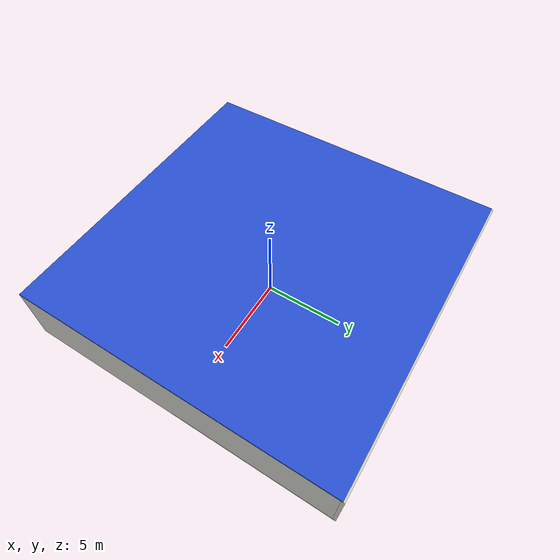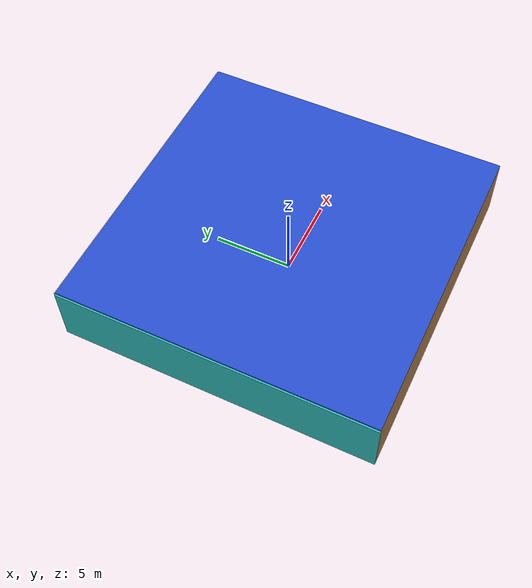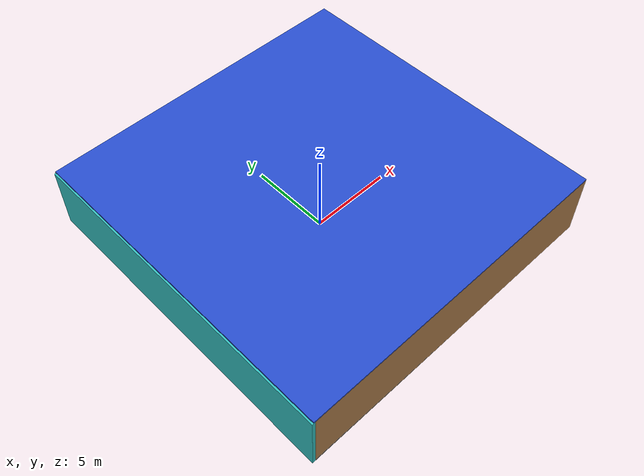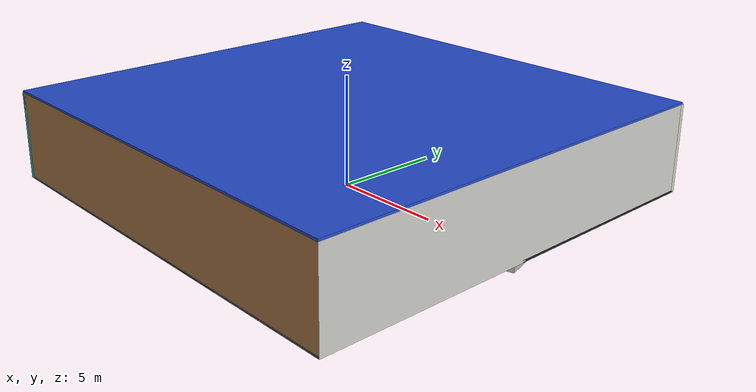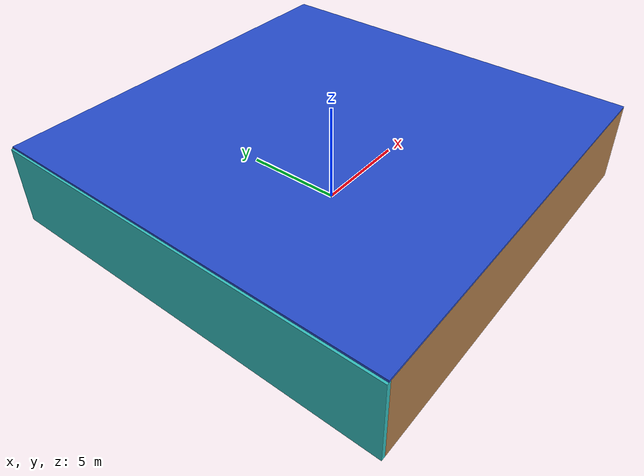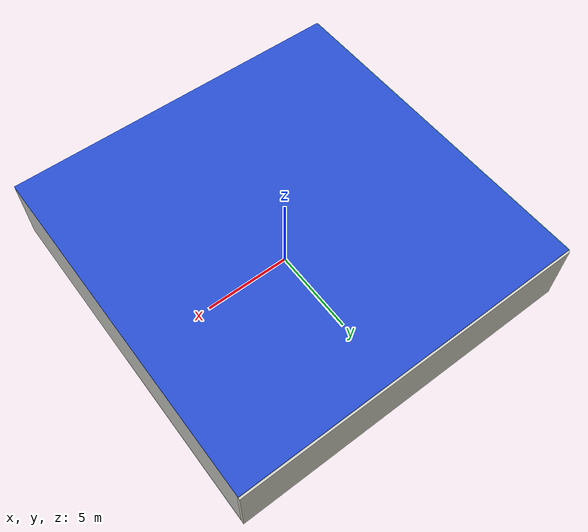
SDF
<sdf version="1.4">
 <world name="default">
  <physics type="ode">
   <max_step_size>0.001</max_step_size>
   <real_time_factor>1</real_time_factor>
   <real_time_update_rate>1000</real_time_update_rate>
   <gravity>0 0 -9.8</gravity>
  </physics>
  <scene><ambient>0.4 0.4 0.4 1</ambient><background>0.7 0.7 0.7 1</background><shadows>1</shadows></scene>
  <model name="Surrounding">
   <static>1</static>
   <link name="Ceiling">
    <collision name="Ceiling_Collision"><geometry><box><size>20 20 0.1</size></box></geometry></collision>
    <visual name="Ceiling_Visual">
     <geometry><box><size>20 20 0.1</size></box></geometry>
     <material>
      <script><uri>file://media/materials/scripts/gazebo.material</uri><name>Gazebo/BlueLaser</name></script>
     </material>
    </visual>
    <pose>0 0 4.05 0 0 0</pose>
   </link>
   <link name="Wall_South">
    <collision name="Wall_South_Collision">
     <geometry><box><size>20 0 4</size></box></geometry>
     <pose>0 0 2 0 -0 0</pose>
    </collision>
    <visual name="Wall_South_Visual">
     <pose>0 0 2 0 -0 0</pose>
     <geometry><box><size>20 0 4</size></box></geometry>
     <material>
      <script><uri>file://media/materials/scripts/gazebo.material</uri><name>Gazebo/WoodPallet</name></script>
     </material>
    </visual>
    <velocity_decay><linear>0</linear><angular>0</angular></velocity_decay>
    <pose>0 -10 0 0 -0 0</pose>
   </link>
   <link name="Wall_East">
    <collision name="Wall_21_Collision">
     <geometry><box><size>20 0 4</size></box></geometry>
     <pose>0 0 2 0 -0 0</pose>
    </collision>
    <visual name="Wall_21_Visual">
     <pose>0 0 2 0 -0 0</pose>
     <geometry><box><size>20 0 4</size></box></geometry>
     <material>
      <script><uri>file://media/materials/scripts/gazebo.material</uri><name>Gazebo/CeilingTiled</name></script>
     </material>
    </visual>
    <velocity_decay><linear>0</linear><angular>0</angular></velocity_decay>
    <pose>10 0 0 0 -0 1.5708</pose>
   </link>
   <link name="Wall_North">
    <collision name="Wall_22_Collision">
     <geometry><box><size>20 0.2 4</size></box></geometry>
     <pose>0 0 2 0 -0 0</pose>
    </collision>
    <visual name="Wall_22_Visual">
     <pose>0 0 2 0 -0 0</pose>
     <geometry><box><size>20 0.2 4</size></box></geometry>
     <material>
      <script><uri>file://media/materials/scripts/gazebo.material</uri><name>Gazebo/PaintedWall</name></script>
     </material>
    </visual>
    <velocity_decay><linear>0</linear><angular>0</angular></velocity_decay>
    <pose>0 10 0 0 -0 0</pose>
   </link>
   <link name="Wall_West">
    <collision name="Wall_23_Collision">
     <geometry><box><size>20 0.2 4</size></box></geometry>
     <pose>0 0 2 0 -0 0</pose>
    </collision>
    <visual name="Wall_23_Visual">
     <pose>0 0 2 0 -0 0</pose>
     <geometry><box><size>20 0.2 4</size></box></geometry>
     <material>
      <script>
       <uri>file://media/materials/scripts/gazebo.material</uri>
       <name>Gazebo/TurquoiseGlowOutline</name>
      </script>
     </material>
    </visual>
    <velocity_decay><linear>0</linear><angular>0</angular></velocity_decay>
    <pose>-10 0 0 0 0 -1.5708</pose>
   </link>
   <link name="Ground_link">
    <collision name="collision">
     <pose>0 0 .05 0 -0 0</pose>
     <geometry><box><size>20 20 0.1</size></box></geometry>
    </collision>
    <visual name="visual">
     <pose>0 0 .05 0 -0 0</pose>
     <geometry><box><size>20 20 0.1</size></box></geometry>
     <material>
      <script><uri>file://media/materials/scripts/gazebo.material</uri><name>Gazebo/Black</name></script>
     </material>
    </visual>
   </link>
   <static>1</static>
  </model>
  <spherical_coordinates>
   <surface_model>EARTH_WGS84</surface_model>
   <latitude_deg>0</latitude_deg>
   <longitude_deg>0</longitude_deg>
   <elevation>0</elevation>
   <heading_deg>0</heading_deg>
  </spherical_coordinates>
  <light name="lightball_0" type="diffuse">
   <diffuse>0.8 0.8 0.8 1</diffuse>
   <specular>0.2 0.2 0.2 1</specular>
   <attenuation>
    <range>100</range>
    <constant>0.7</constant>
    <linear>0.01</linear>
    <quadratic>0.001</quadratic>
   </attenuation>
   <direction>-0.5 0.1 -0.9</direction>
   <pose>0.955634035625 -2.89359516378 1.22194270468 0 0 0</pose>
  </light>
  <light name="lightball_1" type="diffuse">
   <diffuse>0.8 0.8 0.8 1</diffuse>
   <specular>0.2 0.2 0.2 1</specular>
   <attenuation>
    <range>100</range>
    <constant>0.7</constant>
    <linear>0.01</linear>
    <quadratic>0.001</quadratic>
   </attenuation>
   <direction>-0.5 0.1 -0.9</direction>
   <pose>3.68564246899 -8.48869330174 2.55783147752 0 0 0</pose>
  </light>
  <light name="lightball_2" type="diffuse">
   <diffuse>0.8 0.8 0.8 1</diffuse>
   <specular>0.2 0.2 0.2 1</specular>
   <attenuation>
    <range>100</range>
    <constant>0.7</constant>
    <linear>0.01</linear>
    <quadratic>0.001</quadratic>
   </attenuation>
   <direction>-0.5 0.1 -0.9</direction>
   <pose>-9.20358998328 -7.79076440292 1.04215276788 0 0 0</pose>
  </light>
  <light name="lightball_3" type="diffuse">
   <diffuse>0.8 0.8 0.8 1</diffuse>
   <specular>0.2 0.2 0.2 1</specular>
   <attenuation>
    <range>100</range>
    <constant>0.7</constant>
    <linear>0.01</linear>
    <quadratic>0.001</quadratic>
   </attenuation>
   <direction>-0.5 0.1 -0.9</direction>
   <pose>3.5263442616 -7.31532433688 1.94396372188 0 0 0</pose>
  </light>
  <light name="lightball_4" type="diffuse">
   <diffuse>0.8 0.8 0.8 1</diffuse>
   <specular>0.2 0.2 0.2 1</specular>
   <attenuation>
    <range>100</range>
    <constant>0.7</constant>
    <linear>0.01</linear>
    <quadratic>0.001</quadratic>
   </attenuation>
   <direction>-0.5 0.1 -0.9</direction>
   <pose>3.41810382672 3.45987272103 3.18772020573 0 0 0</pose>
  </light>
  <light name="lightball_5" type="diffuse">
   <diffuse>0.8 0.8 0.8 1</diffuse>
   <specular>0.2 0.2 0.2 1</specular>
   <attenuation>
    <range>100</range>
    <constant>0.7</constant>
    <linear>0.01</linear>
    <quadratic>0.001</quadratic>
   </attenuation>
   <direction>-0.5 0.1 -0.9</direction>
   <pose>9.05526177804 -3.6355933298 3.89731803285 0 0 0</pose>
  </light>
  <light name="lightball_6" type="diffuse">
   <diffuse>0.8 0.8 0.8 1</diffuse>
   <specular>0.2 0.2 0.2 1</specular>
   <attenuation>
    <range>100</range>
    <constant>0.7</constant>
    <linear>0.01</linear>
    <quadratic>0.001</quadratic>
   </attenuation>
   <direction>-0.5 0.1 -0.9</direction>
   <pose>-2.27862767642 -4.80604426024 1.22963784653 0 0 0</pose>
  </light>
  <light name="lightball_7" type="diffuse">
   <diffuse>0.8 0.8 0.8 1</diffuse>
   <specular>0.2 0.2 0.2 1</specular>
   <attenuation>
    <range>100</range>
    <constant>0.7</constant>
    <linear>0.01</linear>
    <quadratic>0.001</quadratic>
   </attenuation>
   <direction>-0.5 0.1 -0.9</direction>
   <pose>-2.42369794416 -2.48888785772 0.649315472995 0 0 0</pose>
  </light>
  <light name="lightball_8" type="diffuse">
   <diffuse>0.8 0.8 0.8 1</diffuse>
   <specular>0.2 0.2 0.2 1</specular>
   <attenuation>
    <range>100</range>
    <constant>0.7</constant>
    <linear>0.01</linear>
    <quadratic>0.001</quadratic>
   </attenuation>
   <direction>-0.5 0.1 -0.9</direction>
   <pose>-0.855588894775 -0.239685656352 2.52734327296 0 0 0</pose>
  </light>
  <light name="lightball_9" type="diffuse">
   <diffuse>0.8 0.8 0.8 1</diffuse>
   <specular>0.2 0.2 0.2 1</specular>
   <attenuation>
    <range>100</range>
    <constant>0.7</constant>
    <linear>0.01</linear>
    <quadratic>0.001</quadratic>
   </attenuation>
   <direction>-0.5 0.1 -0.9</direction>
   <pose>0.233217335968 -4.82542946671 1.08124380181 0 0 0</pose>
  </light>
  <light name="lightball_10" type="diffuse">
   <diffuse>0.8 0.8 0.8 1</diffuse>
   <specular>0.2 0.2 0.2 1</specular>
   <attenuation>
    <range>100</range>
    <constant>0.7</constant>
    <linear>0.01</linear>
    <quadratic>0.001</quadratic>
   </attenuation>
   <direction>-0.5 0.1 -0.9</direction>
   <pose>9.19431089083 -1.47145798291 2.48815825435 0 0 0</pose>
  </light>
  <light name="lightball_11" type="diffuse">
   <diffuse>0.8 0.8 0.8 1</diffuse>
   <specular>0.2 0.2 0.2 1</specular>
   <attenuation>
    <range>100</range>
    <constant>0.7</constant>
    <linear>0.01</linear>
    <quadratic>0.001</quadratic>
   </attenuation>
   <direction>-0.5 0.1 -0.9</direction>
   <pose>-6.50263289268 8.86522499238 2.10582823468 0 0 0</pose>
  </light>
  <light name="lightball_12" type="diffuse">
   <diffuse>0.8 0.8 0.8 1</diffuse>
   <specular>0.2 0.2 0.2 1</specular>
   <attenuation>
    <range>100</range>
    <constant>0.7</constant>
    <linear>0.01</linear>
    <quadratic>0.001</quadratic>
   </attenuation>
   <direction>-0.5 0.1 -0.9</direction>
   <pose>-9.20657039455 6.36600012645 1.77054704985 0 0 0</pose>
  </light>
  <include><uri>model://cabinet</uri><pose>-7.40202733153 -2.22132811294 0 0 0 1.24597751315</pose></include>
  <include>
   <uri>model://construction_cone</uri>
   <pose>-5.63433681105 2.39811361381 0 0 0 0.441067625247</pose>
  </include>
  <include><uri>model://cabinet</uri><pose>-4.58333864665 3.84756303607 0 0 0 2.47374776842</pose></include>
  <include><uri>model://cabinet</uri><pose>-2.40886665761 -2.65662618317 0 0 0 2.81003752596</pose></include>
  <include>
   <uri>model://textured_shapes</uri>
   <pose>0.68617714455 -8.66716336419 0 0 0 1.50240055436</pose>
  </include>
  <include>
   <uri>model://robocup_3Dsim_goal</uri>
   <pose>1.69626466707 1.49016664244 0 0 0 1.77216351117</pose>
  </include>
  <include><uri>model://table</uri><pose>5.38293497817 -6.78111882366 0 0 0 0.061544573227</pose></include>
  <include>
   <uri>model://robocup_3Dsim_goal</uri>
   <pose>4.73476541923 -5.01469602548 0 0 0 0.141548477719</pose>
  </include>
  <include>
   <uri>model://textured_shapes</uri>
   <pose>6.72725636076 -3.86732539794 0 0 0 2.86975882037</pose>
  </include>
  <include>
   <uri>model://textured_shapes</uri>
   <pose>7.65203392463 -0.326647778848 0 0 0 1.84406557844</pose>
  </include>
 </world>
</sdf>

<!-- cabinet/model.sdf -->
<sdf version="1.5">
  <model name="cabinet">
    <static>true</static>
    <link name="cabinet_bottom_plate">
      <inertial>
        <pose>0 0 -1 0 0 0</pose>
        <inertia>
          <ixx>2.050000</ixx>
          <ixy>0</ixy>
          <ixz>0</ixz>
          <iyy>2.050000</iyy>
          <iyz>0</iyz>
          <izz>2.050000</izz>
        </inertia>
        <mass>25.000000</mass>
      </inertial>
      <collision name="cabinet_bottom_plate_geom">
        <pose>0 0 0.010000 0 0 0</pose>
        <geometry>
          <box>
            <size>0.450000 0.450000 0.020000</size>
          </box>
        </geometry>
      </collision>
      <visual name="cabinet_bottom_plate_geom_visual">
        <pose>0 0 0.010000 0 0 0</pose>
        <geometry>
          <box>
            <size>0.450000 0.450000 0.020000</size>
          </box>
        </geometry>
        <material>
          <script>
            <uri>model://media/materials/scripts/gazebo.material</uri>
            <name>Gazebo/Wood</name>
          </script>
        </material>
      </visual>
      <collision name="cabinet_bottom_plate_geom_cabinet_back_plate">
        <pose>0.235000 0 0.510000 0 0 0</pose>
        <geometry>
          <box>
            <size>0.020000 0.450000 1.020000</size>
          </box>
        </geometry>
      </collision>
      <visual name="cabinet_bottom_plate_geom_cabinet_back_plate_visual">
        <pose>0.235000 0 0.510000 0 0 0</pose>
        <geometry>
          <box>
            <size>0.020000 0.450000 1.020000</size>
          </box>
        </geometry>
        <material>
          <script>
            <uri>model://media/materials/scripts/gazebo.material</uri>
            <name>Gazebo/Wood</name>
          </script>
        </material>
      </visual>
      <collision name="cabinet_bottom_plate_geom_cabinet_left_plate">
        <pose>0 0.235000 0.510000 0 0 0</pose>
        <geometry>
          <box>
            <size>0.450000 0.020000 1.020000</size>
          </box>
        </geometry>
      </collision>
      <visual name="cabinet_bottom_plate_geom_cabinet_left_plate_visual">
        <pose>0 0.235000 0.510000 0 0 0</pose>
        <geometry>
          <box>
            <size>0.450000 0.020000 1.020000</size>
          </box>
        </geometry>
        <material>
          <script>
            <uri>model://media/materials/scripts/gazebo.material</uri>
            <name>Gazebo/Wood</name>
          </script>
        </material>
      </visual>
      <collision name="cabinet_bottom_plate_geom_cabinet_middle_plate">
        <pose>0 0 0.510000 0 0 0</pose>
        <geometry>
          <box>
            <size>0.450000 0.450000 0.020000</size>
          </box>
        </geometry>
      </collision>
      <visual name="cabinet_bottom_plate_geom_cabinet_middle_plate_visual">
        <pose>0 0 0.510000 0 0 0</pose>
        <geometry>
          <box>
            <size>0.450000 0.450000 0.020000</size>
          </box>
        </geometry>
        <material>
          <script>
            <uri>model://media/materials/scripts/gazebo.material</uri>
            <name>Gazebo/Wood</name>
          </script>
        </material>
      </visual>
      <collision name="cabinet_bottom_plate_geom_cabinet_right_plate">
        <pose>0 -0.235000 0.510000 0 0 0</pose>
        <geometry>
          <box>
            <size>0.450000 0.020000 1.020000</size>
          </box>
        </geometry>
      </collision>
      <visual name="cabinet_bottom_plate_geom_cabinet_right_plate_visual">
        <pose>0 -0.235000 0.510000 0 0 0</pose>
        <geometry>
          <box>
            <size>0.450000 0.020000 1.020000</size>
          </box>
        </geometry>
        <material>
          <script>
            <uri>model://media/materials/scripts/gazebo.material</uri>
            <name>Gazebo/Wood</name>
          </script>
        </material>
      </visual>
      <collision name="cabinet_bottom_plate_geom_cabinet_top_plate">
        <pose>0 0 1.010000 0 0 0</pose>
        <geometry>
          <box>
            <size>0.450000 0.450000 0.020000</size>
          </box>
        </geometry>
      </collision>
      <visual name="cabinet_bottom_plate_geom_cabinet_top_plate_visual">
        <pose>0 0 1.010000 0 0 0</pose>
        <geometry>
          <box>
            <size>0.450000 0.450000 0.020000</size>
          </box>
        </geometry>
        <material>
          <script>
            <uri>model://media/materials/scripts/gazebo.material</uri>
            <name>Gazebo/Wood</name>
          </script>
        </material>
      </visual>
    </link>
  </model>
</sdf>

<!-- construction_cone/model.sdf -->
<sdf version="1.5">
  <model name="Construction Cone">
    <link name="link">
      <collision name="collision">
        <geometry>
          <mesh>
            <scale>10 10 10</scale>
            <uri>file://isr-testbed/construction_cone/meshes/construction_cone.dae</uri>
          </mesh>
        </geometry>
      </collision>
      <visual name="visual">
        <geometry>
          <mesh>
            <scale>10 10 10</scale>
            <uri>file://isr-testbed/construction_cone/meshes/construction_cone.dae</uri>
          </mesh>
        </geometry>
      </visual>
    </link>
  </model>
</sdf>

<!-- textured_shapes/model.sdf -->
<sdf version="1.6">
  <model name="textured_shapes">
    <pose>0 0 0.5 0 0 0</pose>
    <link name="box">
      <pose>0 -1.5 0 0 0 0</pose>
      <collision name="collision">
        <geometry>
          <box>
            <size>1 1 1</size>
          </box>
        </geometry>
      </collision>
      <visual name="visual">
        <geometry>
          <box>
            <size>1 1 1</size>
          </box>
        </geometry>
        <material>
          <script>
            <uri>model://../model_source/models/textured_shapes/materials/scripts</uri>
            <uri>model://../model_source/models/textured_shapes/materials/textures</uri>
            <name>TexturedShape/Squares</name>
          </script>
        </material>
      </visual>
    </link>
    <link name="sphere">
      <collision name="collision">
        <geometry>
          <sphere>
            <radius>0.5</radius>
          </sphere>
        </geometry>
      </collision>
      <visual name="visual">
        <geometry>
          <sphere>
            <radius>0.5</radius>
          </sphere>
        </geometry>
        <material>
          <script>
            <uri>model://../model_source/models/textured_shapes/materials/scripts</uri>
            <uri>model://../model_source/models/textured_shapes/materials/textures</uri>
            <name>TexturedShape/Squares</name>
          </script>
        </material>
      </visual>
    </link>
    <link name="cylinder">
      <pose>0 1.5 0 0 0 0</pose>
      <collision name="collision">
        <geometry>
          <cylinder>
            <radius>0.5</radius>
            <length>1</length>
          </cylinder>
        </geometry>
      </collision>
      <visual name="visual">
        <geometry>
          <cylinder>
            <radius>0.5</radius>
            <length>1</length>
          </cylinder>
        </geometry>
        <material>
          <script>
            <uri>model://../model_source/models/textured_shapes/materials/scripts</uri>
            <uri>model://../model_source/models/textured_shapes/materials/textures</uri>
            <name>TexturedShape/Squares</name>
          </script>
        </material>
      </visual>
    </link>
  </model>
</sdf>

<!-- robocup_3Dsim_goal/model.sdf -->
<sdf version="1.5">
  <model name="robocup_3d_goal">
    <static>true</static>
    <link name="left_post">
      <pose>0 1.05 0.45 0 0 0</pose>
      <collision name="collision">
        <geometry>
          <cylinder>
            <radius>0.05</radius>
            <length>0.9</length>
          </cylinder>
        </geometry>
      </collision>
      <visual name="visual">
        <geometry>
          <cylinder>
            <radius>0.05</radius>
            <length>0.9</length>
          </cylinder>
        </geometry>
        <material>
          <script>
            <uri>file://media/materials/scripts/gazebo.material</uri>
            <name>Gazebo/ZincYellow</name>
          </script>
        </material>
      </visual>
    </link>
    <link name="left_support_horiz_lower">
      <pose>0.30 1.05 0.01 0 0 0</pose>
      <collision name="collision">
        <geometry>
          <box>
            <size>0.50 0.02 0.02</size>
          </box>
        </geometry>
      </collision>
      <visual name="visual">
        <geometry>
          <box>
            <size>0.50 0.02 0.02</size>
          </box>
        </geometry>
        <material>
          <script>
            <uri>file://media/materials/scripts/gazebo.material</uri>
            <name>Gazebo/White</name>
          </script>
        </material>
      </visual>
    </link>
    <link name="left_support_horiz_upper">
      <pose>0.30 1.05 0.79 0 0 0</pose>
      <collision name="collision">
        <geometry>
          <box>
            <size>0.50 0.02 0.02</size>
          </box>
        </geometry>
      </collision>
      <visual name="visual">
        <geometry>
          <box>
            <size>0.50 0.02 0.02</size>
          </box>
        </geometry>
        <material>
          <script>
            <uri>file://media/materials/scripts/gazebo.material</uri>
            <name>Gazebo/White</name>
          </script>
        </material>
      </visual>
    </link>
    <link name="left_support_vertical">
      <pose>0.56 1.05 0.4 0 1.5708 0</pose>
      <collision name="collision">
        <geometry>
          <box>
            <size>0.80 0.02 0.02</size>
          </box>
        </geometry>
      </collision>
      <visual name="visual">
        <geometry>
          <box>
            <size>0.80 0.02 0.02</size>
          </box>
        </geometry>
        <material>
          <script>
            <uri>file://media/materials/scripts/gazebo.material</uri>
            <name>Gazebo/White</name>
          </script>
        </material>
      </visual>
    </link>
    <link name="right_support_horiz_lower">
      <pose>0.30 -1.05 0.01 0 0 0</pose>
      <collision name="collision">
        <geometry>
          <box>
            <size>0.50 0.02 0.02</size>
          </box>
        </geometry>
      </collision>
      <visual name="visual">
        <geometry>
          <box>
            <size>0.50 0.02 0.02</size>
          </box>
        </geometry>
        <material>
          <script>
            <uri>file://media/materials/scripts/gazebo.material</uri>
            <name>Gazebo/White</name>
          </script>
        </material>
      </visual>
    </link>
    <link name="right_support_horiz_upper">
      <pose>0.30 -1.05 0.79 0 0 0</pose>
      <collision name="collision">
        <geometry>
          <box>
            <size>0.50 0.02 0.02</size>
          </box>
        </geometry>
      </collision>
      <visual name="visual">
        <geometry>
          <box>
            <size>0.50 0.02 0.02</size>
          </box>
        </geometry>
        <material>
          <script>
            <uri>file://media/materials/scripts/gazebo.material</uri>
            <name>Gazebo/White</name>
          </script>
        </material>
      </visual>
    </link>
    <link name="right_support_vertical">
      <pose>0.56 -1.05 0.4 0 1.5708 0</pose>
      <collision name="collision">
        <geometry>
          <box>
            <size>0.80 0.02 0.02</size>
          </box>
        </geometry>
      </collision>
      <visual name="visual">
        <geometry>
          <box>
            <size>0.80 0.02 0.02</size>
          </box>
        </geometry>
        <material>
          <script>
            <uri>file://media/materials/scripts/gazebo.material</uri>
            <name>Gazebo/White</name>
          </script>
        </material>
      </visual>
    </link>
    <link name="center_support_horiz_lower">
      <pose>0.56 0 0.01 0 1.5708 0</pose>
      <collision name="collision">
        <geometry>
          <box>
            <size>0.02 2.08 0.02</size>
          </box>
        </geometry>
      </collision>
      <visual name="visual">
        <geometry>
          <box>
            <size>0.02 2.08 0.02</size>
          </box>
        </geometry>
        <material>
          <script>
            <uri>file://media/materials/scripts/gazebo.material</uri>
            <name>Gazebo/White</name>
          </script>
        </material>
      </visual>
    </link>
    <link name="center_support_horiz_upper">
      <pose>0.56 0 0.79 0 1.5708 0</pose>
      <collision name="collision">
        <geometry>
          <box>
            <size>0.02 2.08 0.02</size>
          </box>
        </geometry>
      </collision>
      <visual name="visual">
        <geometry>
          <box>
            <size>0.02 2.08 0.02</size>
          </box>
        </geometry>
        <material>
          <script>
            <uri>file://media/materials/scripts/gazebo.material</uri>
            <name>Gazebo/White</name>
          </script>
        </material>
      </visual>
    </link>
    <link name="right_post">
      <pose>0 -1.05 0.45 0 0 0</pose>
      <collision name="collision">
        <geometry>
          <cylinder>
            <radius>0.05</radius>
            <length>0.9</length>
          </cylinder>
        </geometry>
      </collision>
      <visual name="visual">
        <geometry>
          <cylinder>
            <radius>0.05</radius>
            <length>0.9</length>
          </cylinder>
        </geometry>
        <material>
          <script>
            <uri>file://media/materials/scripts/gazebo.material</uri>
            <name>Gazebo/ZincYellow</name>
          </script>
        </material>
      </visual>
    </link>
    <link name="crossbar">
      <pose>0 0 0.85 1.57 1.57 0</pose>
      <collision name="collision">
        <geometry>
          <cylinder>
            <radius>0.05</radius>
            <length>2.0</length>
          </cylinder>
        </geometry>
      </collision>
      <visual name="visual">
        <geometry>
          <cylinder>
            <radius>0.05</radius>
            <length>2.0</length>
          </cylinder>
        </geometry>
        <material>
          <script>
            <uri>file://media/materials/scripts/gazebo.material</uri>
            <name>Gazebo/ZincYellow</name>
          </script>
        </material>
      </visual>
    </link>
    <link name="center_net">
      <pose>0.56 0 0.40 0 0 0</pose>
      <collision name="collision">
        <geometry>
          <box>
            <size>0.01 2.1 0.80</size>
          </box>
        </geometry>
      </collision>
      <visual name="visual">
        <geometry>
          <box>
            <size>0.01 2.1 0.80</size>
          </box>
        </geometry>
        <material>
          <script>
            <uri>model://../model_source/models/robocup09_spl_field/materials/scripts/</uri>
            <uri>model://../model_source/models/robocup09_spl_field/materials/textures/</uri>
            <name>RoboCup/Net</name>
          </script>
        </material>
      </visual>
    </link>
    <link name="left_net">
      <pose>0.30 1.05 0.40 0 0 0</pose>
      <collision name="collision">
        <geometry>
          <box>
            <size>0.50 0.01 0.76</size>
          </box>
        </geometry>
      </collision>
      <visual name="visual">
        <geometry>
          <box>
            <size>0.50 0.01 0.76</size>
          </box>
        </geometry>
        <material>
          <script>
            <uri>model://../model_source/models/robocup09_spl_field/materials/scripts/</uri>
            <uri>model://../model_source/models/robocup09_spl_field/materials/textures/</uri>
            <name>RoboCup/Net</name>
          </script>
        </material>
      </visual>
    </link>
    <link name="right_net">
      <pose>0.30 -1.05 0.40 0 0 0</pose>
      <collision name="collision">
        <geometry>
          <box>
            <size>0.50 0.01 0.76</size>
          </box>
        </geometry>
      </collision>
      <visual name="visual">
        <geometry>
          <box>
            <size>0.50 0.01 0.76</size>
          </box>
        </geometry>
        <material>
          <script>
            <uri>model://../model_source/models/robocup09_spl_field/materials/scripts/</uri>
            <uri>model://../model_source/models/robocup09_spl_field/materials/textures/</uri>
            <name>RoboCup/Net</name>
          </script>
        </material>
      </visual>
    </link>
  </model>
</sdf>

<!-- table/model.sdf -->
<sdf version="1.5">
  <model name="table">
    <static>true</static>
    <link name="link">
      <collision name="surface">
        <pose>0 0 1.0 0 0 0</pose>
        <geometry>
          <box>
            <size>1.5 0.8 0.03</size>
          </box>
        </geometry>
        <surface>
          <friction>
            <ode>
              <mu>0.6</mu>
              <mu2>0.6</mu2>
            </ode>
          </friction>
        </surface>
      </collision>
      <visual name="visual1">
        <pose>0 0 1.0 0 0 0</pose>
        <geometry>
          <box>
            <size>1.5 0.8 0.03</size>
          </box>
        </geometry>
        <material>
          <script>
            <uri>model://media/materials/scripts/gazebo.material</uri>
            <name>Gazebo/Wood</name>
          </script>
        </material>
      </visual>
      <collision name="front_left_leg">
        <pose>0.68 0.38 0.5 0 0 0</pose>
        <geometry>
          <cylinder>
            <radius>0.02</radius>
            <length>1.0</length>
          </cylinder>
        </geometry>
      </collision>
      <visual name="front_left_leg">
        <pose>0.68 0.38 0.5 0 0 0</pose>
        <geometry>
          <cylinder>
            <radius>0.02</radius>
            <length>1.0</length>
          </cylinder>
        </geometry>
        <material>
          <script>
            <uri>model://media/materials/scripts/gazebo.material</uri>
            <name>Gazebo/Grey</name>
          </script>
        </material>
      </visual>
      <collision name="front_right_leg">
        <pose>0.68 -0.38 0.5 0 0 0</pose>
        <geometry>
          <cylinder>
            <radius>0.02</radius>
            <length>1.0</length>
          </cylinder>
        </geometry>
      </collision>
      <visual name="front_right_leg">
        <pose>0.68 -0.38 0.5 0 0 0</pose>
        <geometry>
          <cylinder>
            <radius>0.02</radius>
            <length>1.0</length>
          </cylinder>
        </geometry>
        <material>
          <script>
            <uri>model://media/materials/scripts/gazebo.material</uri>
            <name>Gazebo/Grey</name>
          </script>
        </material>
      </visual>
      <collision name="back_right_leg">
        <pose>-0.68 -0.38 0.5 0 0 0</pose>
        <geometry>
          <cylinder>
            <radius>0.02</radius>
            <length>1.0</length>
          </cylinder>
        </geometry>
      </collision>
      <visual name="back_right_leg">
        <pose>-0.68 -0.38 0.5 0 0 0</pose>
        <geometry>
          <cylinder>
            <radius>0.02</radius>
            <length>1.0</length>
          </cylinder>
        </geometry>
        <material>
          <script>
            <uri>model://media/materials/scripts/gazebo.material</uri>
            <name>Gazebo/Grey</name>
          </script>
        </material>
      </visual>
      <collision name="back_left_leg">
        <pose>-0.68 0.38 0.5 0 0 0</pose>
        <geometry>
          <cylinder>
            <radius>0.02</radius>
            <length>1.0</length>
          </cylinder>
        </geometry>
      </collision>
      <visual name="back_left_leg">
        <pose>-0.68 0.38 0.5 0 0 0</pose>
        <geometry>
          <cylinder>
            <radius>0.02</radius>
            <length>1.0</length>
          </cylinder>
        </geometry>
        <material>
          <script>
            <uri>model://media/materials/scripts/gazebo.material</uri>
            <name>Gazebo/Grey</name>
          </script>
        </material>
      </visual>
    </link>
  </model>
</sdf>
